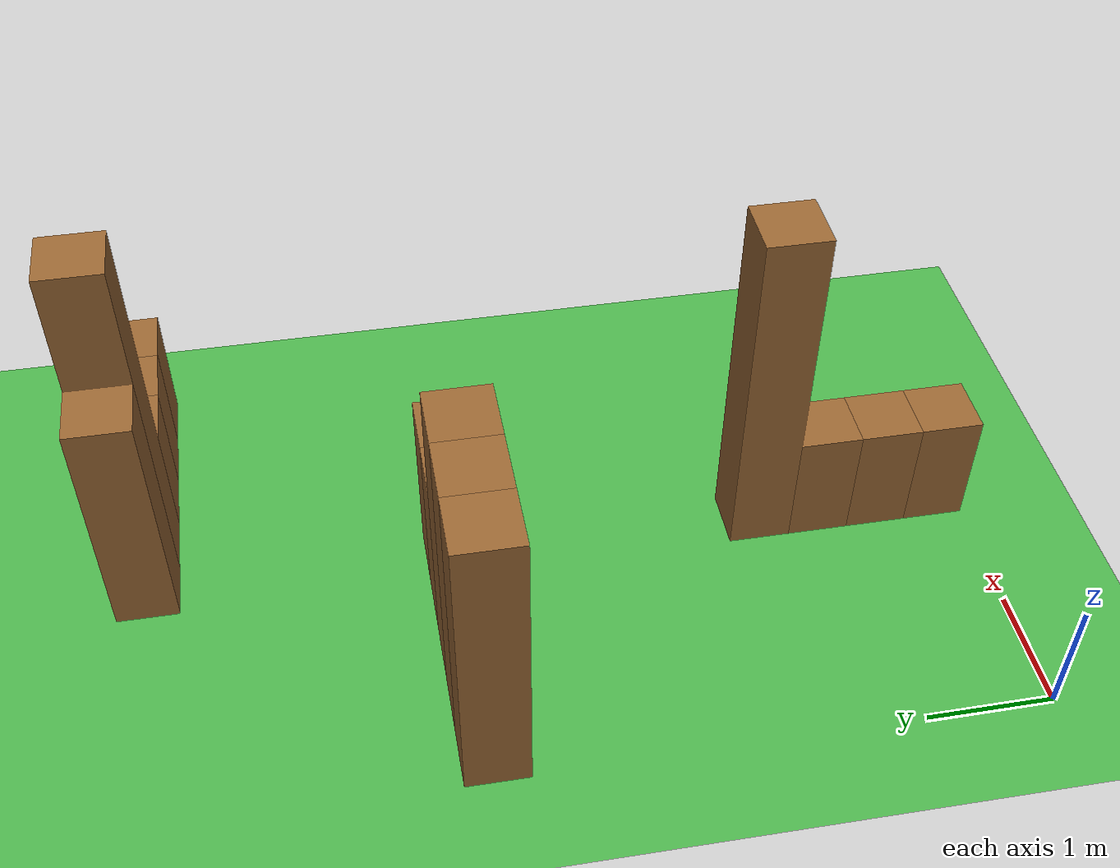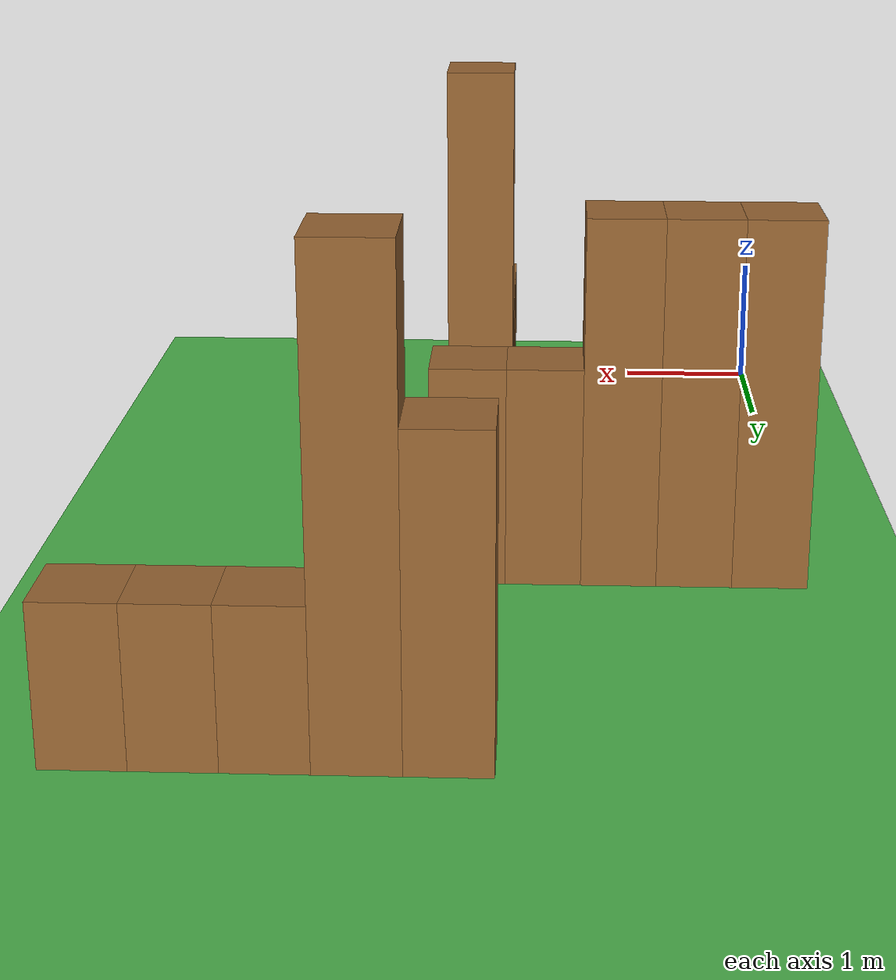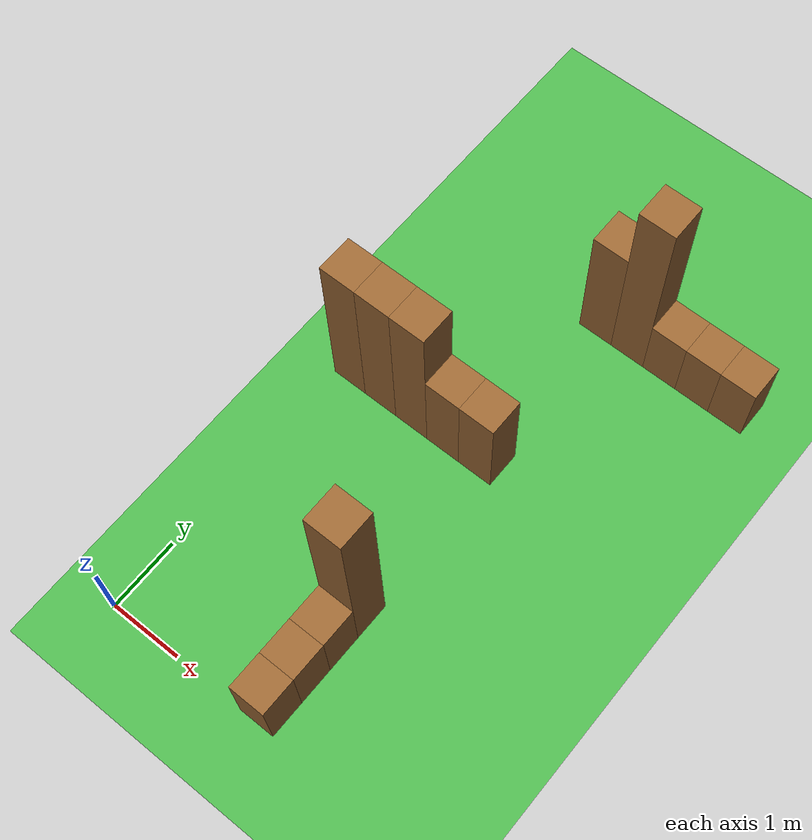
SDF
<?xml version="1.0"?>
<sdf version="1.7">
  <world name="bkk">

<!-- Physics settings -->
<physics type="ode">
  <max_step_size>0.004</max_step_size>
  <real_time_factor>1.0</real_time_factor>
  <real_time_update_rate>250</real_time_update_rate>
</physics>
<gravity>0 0 -9.8</gravity>

<!-- Magnetic field - Taiwan location (23.089813°N, 120.307312°E) -->
<magnetic_field>2.5e-05 1.8e-05 -4.0e-05</magnetic_field>

<!-- Atmosphere -->
<atmosphere type="adiabatic"/>

<!-- Spherical coordinates for GPS - Taiwan location (7QM238Q4+WW) -->
<spherical_coordinates>
  <surface_model>EARTH_WGS84</surface_model>
  <world_frame_orientation>ENU</world_frame_orientation>
  <latitude_deg>23.089813</latitude_deg>
  <longitude_deg>120.307312</longitude_deg>
  <elevation>0</elevation>
</spherical_coordinates>

<!-- Scene settings with no shadows -->
<scene>
  <ambient>1 1 1 1</ambient>
  <background>1 1 1 1</background>
  <shadows>false</shadows>
</scene>

<!-- GUI camera with top-down view -->
<gui>
  <camera name="user_camera">
    <pose>2.25 4.5 20 0 1.57 0</pose>
  </camera>
</gui>

<!-- Overhead directional light with no shadows -->
<light type="directional" name="no_shadow_light">
  <cast_shadows>false</cast_shadows>
  <pose>0 0 10 0 0 0</pose>
  <diffuse>1 1 1 1</diffuse>
  <specular>0.1 0.1 0.1 1</specular>
  <attenuation>
    <range>1000</range>
    <constant>1</constant>
    <linear>0</linear>
    <quadratic>0</quadratic>
  </attenuation>
  <direction>0 0 -1</direction>
</light>

<!-- Top-down camera directly above the grid -->
<model name="top_camera">
  <static>true</static>
  <pose>2.25 4.5 20 0 1.5708 0</pose>
  <link name="link">
    <sensor name="top_down_camera" type="camera">
      <pose>0 0 0 0 0 0</pose>
      <camera>
        <horizontal_fov>1.047</horizontal_fov>
        <image>
          <width>800</width>
          <height>800</height>
          <format>R8G8B8</format>
        </image>
        <clip>
          <near>0.1</near>
          <far>100</far>
        </clip>
      </camera>
      <always_on>true</always_on>
      <update_rate>30</update_rate>
      <visualize>true</visualize>
    </sensor>
  </link>
</model>

    <!-- Outer green ground plane (6x11) -->
    <model name="outer_ground_plane">
      <static>true</static>
      <pose>2.25 4.5 -0.01 0 0 0</pose>
      <link name="link">
        <collision name="collision">
          <geometry>
            <plane>
              <normal>0 0 1</normal>
              <size>6 11</size>
            </plane>
          </geometry>
          <surface>
            <friction>
              <ode/>
            </friction>
            <bounce/>
            <contact/>
          </surface>
        </collision>
        <visual name="visual">
          <geometry>
            <plane>
              <normal>0 0 1</normal>
              <size>6 11</size>
            </plane>
          </geometry>
          <material>
            <ambient>0.2 0.6 0.2 1</ambient>
            <diffuse>0.3 0.7 0.3 1</diffuse>
            <specular>0.1 0.1 0.1 1</specular>
          </material>
        </visual>
      </link>
    </model>

    <!-- Main brown ground plane (4.5x9) with origin at bottom-left corner -->
    <model name="ground_plane">
      <static>true</static>
      <pose>2.25 4.5 0 0 0 0</pose>
      <link name="link">
        <collision name="collision">
          <geometry>
            <plane>
              <normal>0 0 1</normal>
              <size>4.5 9</size>
            </plane>
          </geometry>
          <surface>
            <friction>
              <ode/>
            </friction>
            <bounce/>
            <contact/>
          </surface>
        </collision>
        <visual name="visual">
          <geometry>
            <plane>
              <normal>0 0 1</normal>
              <size>4.5 9</size>
            </plane>
          </geometry>
          <material>
             <ambient>0.5 0.5 0.5 1</ambient>
             <diffuse>0.6 0.6 0.6 1</diffuse>
             <specular>0.1 0.1 0.1 1</specular>
        </material>
        </visual>
      </link>
    </model>

    <!-- New layout: 4.5m × 9m with origin at bottom-left corner -->
    <!-- Top-right horizontal row: 5 blocks with heights 2, 3, 1, 1, 1 meters -->
    <!-- Positioned 2m from right edge, 2m from top edge -->

    <!-- Top-right row block 1: height 2m -->
    <model name="top_right_1">
      <static>true</static>
      <pose>2.25 6.75 1.0 0 0 0</pose>
      <link name="stack_link">
        <collision name="collision">
          <geometry>
            <box>
              <size>0.5 0.5 2.0</size>
            </box>
          </geometry>
        </collision>
        <visual name="visual">
          <geometry>
            <box>
              <size>0.5 0.5 2.0</size>
            </box>
          </geometry>
          <material>
            <ambient>0.4 0.25 0.1 1</ambient>
            <diffuse>0.6 0.4 0.2 1</diffuse>
            <specular>0.1 0.1 0.1 1</specular>
          </material>
        </visual>
        <inertial>
          <mass>2.0</mass>
          <inertia>
            <ixx>0.111</ixx>
            <ixy>0</ixy>
            <ixz>0</ixz>
            <iyy>0.111</iyy>
            <iyz>0</iyz>
            <izz>0.042</izz>
          </inertia>
        </inertial>
      </link>
    </model>

    <!-- Top-right row block 2: height 3m -->
    <model name="top_right_2">
      <static>true</static>
      <pose>2.75 6.75 1.5 0 0 0</pose>
      <link name="stack_link">
        <collision name="collision">
          <geometry>
            <box>
              <size>0.5 0.5 3.0</size>
            </box>
          </geometry>
        </collision>
        <visual name="visual">
          <geometry>
            <box>
              <size>0.5 0.5 3.0</size>
            </box>
          </geometry>
          <material>
            <ambient>0.4 0.25 0.1 1</ambient>
            <diffuse>0.6 0.4 0.2 1</diffuse>
            <specular>0.1 0.1 0.1 1</specular>
          </material>
        </visual>
        <inertial>
          <mass>3.0</mass>
          <inertia>
            <ixx>0.172</ixx>
            <ixy>0</ixy>
            <ixz>0</ixz>
            <iyy>0.172</iyy>
            <iyz>0</iyz>
            <izz>0.042</izz>
          </inertia>
        </inertial>
      </link>
    </model>

    <!-- Top-right row block 3: height 1m -->
    <model name="top_right_3">
      <static>true</static>
      <pose>3.25 6.75 0.5 0 0 0</pose>
      <link name="stack_link">
        <collision name="collision">
          <geometry>
            <box>
              <size>0.5 0.5 1.0</size>
            </box>
          </geometry>
        </collision>
        <visual name="visual">
          <geometry>
            <box>
              <size>0.5 0.5 1.0</size>
            </box>
          </geometry>
          <material>
            <ambient>0.4 0.25 0.1 1</ambient>
            <diffuse>0.6 0.4 0.2 1</diffuse>
            <specular>0.1 0.1 0.1 1</specular>
          </material>
        </visual>
        <inertial>
          <mass>1.0</mass>
          <inertia>
            <ixx>0.028</ixx>
            <ixy>0</ixy>
            <ixz>0</ixz>
            <iyy>0.028</iyy>
            <iyz>0</iyz>
            <izz>0.042</izz>
          </inertia>
        </inertial>
      </link>
    </model>

    <!-- Top-right row block 4: height 1m -->
    <model name="top_right_4">
      <static>true</static>
      <pose>3.75 6.75 0.5 0 0 0</pose>
      <link name="stack_link">
        <collision name="collision">
          <geometry>
            <box>
              <size>0.5 0.5 1.0</size>
            </box>
          </geometry>
        </collision>
        <visual name="visual">
          <geometry>
            <box>
              <size>0.5 0.5 1.0</size>
            </box>
          </geometry>
          <material>
            <ambient>0.4 0.25 0.1 1</ambient>
            <diffuse>0.6 0.4 0.2 1</diffuse>
            <specular>0.1 0.1 0.1 1</specular>
          </material>
        </visual>
        <inertial>
          <mass>1.0</mass>
          <inertia>
            <ixx>0.028</ixx>
            <ixy>0</ixy>
            <ixz>0</ixz>
            <iyy>0.028</iyy>
            <iyz>0</iyz>
            <izz>0.042</izz>
          </inertia>
        </inertial>
      </link>
    </model>

    <!-- Top-right row block 5: height 1m -->
    <model name="top_right_5">
      <static>true</static>
      <pose>4.25 6.75 0.5 0 0 0</pose>
      <link name="stack_link">
        <collision name="collision">
          <geometry>
            <box>
              <size>0.5 0.5 1.0</size>
            </box>
          </geometry>
        </collision>
        <visual name="visual">
          <geometry>
            <box>
              <size>0.5 0.5 1.0</size>
            </box>
          </geometry>
          <material>
            <ambient>0.4 0.25 0.1 1</ambient>
            <diffuse>0.6 0.4 0.2 1</diffuse>
            <specular>0.1 0.1 0.1 1</specular>
          </material>
        </visual>
        <inertial>
          <mass>1.0</mass>
          <inertia>
            <ixx>0.028</ixx>
            <ixy>0</ixy>
            <ixz>0</ixz>
            <iyy>0.028</iyy>
            <iyz>0</iyz>
            <izz>0.042</izz>
          </inertia>
        </inertial>
      </link>
    </model>

    <!-- Middle-left horizontal row: 5 blocks with heights 2.5, 2.5, 2.5, 1.5, 1.5 meters -->
    <!-- Positioned 2m from left edge, 2m below top-right row -->

    <!-- Middle-left row block 1: height 2.5m -->
    <model name="middle_left_1">
      <static>true</static>
      <pose>0.25 4.25 1.25 0 0 0</pose>
      <link name="stack_link">
        <collision name="collision">
          <geometry>
            <box>
              <size>0.5 0.5 2.5</size>
            </box>
          </geometry>
        </collision>
        <visual name="visual">
          <geometry>
            <box>
              <size>0.5 0.5 2.5</size>
            </box>
          </geometry>
          <material>
            <ambient>0.4 0.25 0.1 1</ambient>
            <diffuse>0.6 0.4 0.2 1</diffuse>
            <specular>0.1 0.1 0.1 1</specular>
          </material>
        </visual>
        <inertial>
          <mass>2.5</mass>
          <inertia>
            <ixx>0.142</ixx>
            <ixy>0</ixy>
            <ixz>0</ixz>
            <iyy>0.142</iyy>
            <iyz>0</iyz>
            <izz>0.042</izz>
          </inertia>
        </inertial>
      </link>
    </model>

    <!-- Middle-left row block 2: height 2.5m -->
    <model name="middle_left_2">
      <static>true</static>
      <pose>0.75 4.25 1.25 0 0 0</pose>
      <link name="stack_link">
        <collision name="collision">
          <geometry>
            <box>
              <size>0.5 0.5 2.5</size>
            </box>
          </geometry>
        </collision>
        <visual name="visual">
          <geometry>
            <box>
              <size>0.5 0.5 2.5</size>
            </box>
          </geometry>
          <material>
            <ambient>0.4 0.25 0.1 1</ambient>
            <diffuse>0.6 0.4 0.2 1</diffuse>
            <specular>0.1 0.1 0.1 1</specular>
          </material>
        </visual>
        <inertial>
          <mass>2.5</mass>
          <inertia>
            <ixx>0.142</ixx>
            <ixy>0</ixy>
            <ixz>0</ixz>
            <iyy>0.142</iyy>
            <iyz>0</iyz>
            <izz>0.042</izz>
          </inertia>
        </inertial>
      </link>
    </model>

    <!-- Middle-left row block 3: height 2.5m -->
    <model name="middle_left_3">
      <static>true</static>
      <pose>1.25 4.25 1.25 0 0 0</pose>
      <link name="stack_link">
        <collision name="collision">
          <geometry>
            <box>
              <size>0.5 0.5 2.5</size>
            </box>
          </geometry>
        </collision>
        <visual name="visual">
          <geometry>
            <box>
              <size>0.5 0.5 2.5</size>
            </box>
          </geometry>
          <material>
            <ambient>0.4 0.25 0.1 1</ambient>
            <diffuse>0.6 0.4 0.2 1</diffuse>
            <specular>0.1 0.1 0.1 1</specular>
          </material>
        </visual>
        <inertial>
          <mass>2.5</mass>
          <inertia>
            <ixx>0.142</ixx>
            <ixy>0</ixy>
            <ixz>0</ixz>
            <iyy>0.142</iyy>
            <iyz>0</iyz>
            <izz>0.042</izz>
          </inertia>
        </inertial>
      </link>
    </model>

    <!-- Middle-left row block 4: height 1.5m -->
    <model name="middle_left_4">
      <static>true</static>
      <pose>1.75 4.25 0.75 0 0 0</pose>
      <link name="stack_link">
        <collision name="collision">
          <geometry>
            <box>
              <size>0.5 0.5 1.5</size>
            </box>
          </geometry>
        </collision>
        <visual name="visual">
          <geometry>
            <box>
              <size>0.5 0.5 1.5</size>
            </box>
          </geometry>
          <material>
            <ambient>0.4 0.25 0.1 1</ambient>
            <diffuse>0.6 0.4 0.2 1</diffuse>
            <specular>0.1 0.1 0.1 1</specular>
          </material>
        </visual>
        <inertial>
          <mass>1.5</mass>
          <inertia>
            <ixx>0.063</ixx>
            <ixy>0</ixy>
            <ixz>0</ixz>
            <iyy>0.063</iyy>
            <iyz>0</iyz>
            <izz>0.042</izz>
          </inertia>
        </inertial>
      </link>
    </model>

    <!-- Middle-left row block 5: height 1.5m -->
    <model name="middle_left_5">
      <static>true</static>
      <pose>2.25 4.25 0.75 0 0 0</pose>
      <link name="stack_link">
        <collision name="collision">
          <geometry>
            <box>
              <size>0.5 0.5 1.5</size>
            </box>
          </geometry>
        </collision>
        <visual name="visual">
          <geometry>
            <box>
              <size>0.5 0.5 1.5</size>
            </box>
          </geometry>
          <material>
            <ambient>0.4 0.25 0.1 1</ambient>
            <diffuse>0.6 0.4 0.2 1</diffuse>
            <specular>0.1 0.1 0.1 1</specular>
          </material>
        </visual>
        <inertial>
          <mass>1.5</mass>
          <inertia>
            <ixx>0.063</ixx>
            <ixy>0</ixy>
            <ixz>0</ixz>
            <iyy>0.063</iyy>
            <iyz>0</iyz>
            <izz>0.042</izz>
          </inertia>
        </inertial>
      </link>
    </model>

    <!-- Bottom-middle vertical stack: 4 blocks with heights 3, 1, 1, 1 meters -->
    <!-- Positioned centered horizontally, 2m below middle-left row -->

    <!-- Bottom-middle stack block 1: height 3m -->
    <model name="bottom_middle_1">
      <static>true</static>
      <pose>2.25 1.75 1.5 0 0 0</pose>
      <link name="stack_link">
        <collision name="collision">
          <geometry>
            <box>
              <size>0.5 0.5 3.0</size>
            </box>
          </geometry>
        </collision>
        <visual name="visual">
          <geometry>
            <box>
              <size>0.5 0.5 3.0</size>
            </box>
          </geometry>
          <material>
            <ambient>0.4 0.25 0.1 1</ambient>
            <diffuse>0.6 0.4 0.2 1</diffuse>
            <specular>0.1 0.1 0.1 1</specular>
          </material>
        </visual>
        <inertial>
          <mass>3.0</mass>
          <inertia>
            <ixx>0.172</ixx>
            <ixy>0</ixy>
            <ixz>0</ixz>
            <iyy>0.172</iyy>
            <iyz>0</iyz>
            <izz>0.042</izz>
          </inertia>
        </inertial>
      </link>
    </model>

    <!-- Bottom-middle stack block 2: height 1m -->
    <model name="bottom_middle_2">
      <static>true</static>
      <pose>2.25 1.25 0.5 0 0 0</pose>
      <link name="stack_link">
        <collision name="collision">
          <geometry>
            <box>
              <size>0.5 0.5 1.0</size>
            </box>
          </geometry>
        </collision>
        <visual name="visual">
          <geometry>
            <box>
              <size>0.5 0.5 1.0</size>
            </box>
          </geometry>
          <material>
            <ambient>0.4 0.25 0.1 1</ambient>
            <diffuse>0.6 0.4 0.2 1</diffuse>
            <specular>0.1 0.1 0.1 1</specular>
          </material>
        </visual>
        <inertial>
          <mass>1.0</mass>
          <inertia>
            <ixx>0.028</ixx>
            <ixy>0</ixy>
            <ixz>0</ixz>
            <iyy>0.028</iyy>
            <iyz>0</iyz>
            <izz>0.042</izz>
          </inertia>
        </inertial>
      </link>
    </model>

    <!-- Bottom-middle stack block 3: height 1m -->
    <model name="bottom_middle_3">
      <static>true</static>
      <pose>2.25 0.75 0.5 0 0 0</pose>
      <link name="stack_link">
        <collision name="collision">
          <geometry>
            <box>
              <size>0.5 0.5 1.0</size>
            </box>
          </geometry>
        </collision>
        <visual name="visual">
          <geometry>
            <box>
              <size>0.5 0.5 1.0</size>
            </box>
          </geometry>
          <material>
            <ambient>0.4 0.25 0.1 1</ambient>
            <diffuse>0.6 0.4 0.2 1</diffuse>
            <specular>0.1 0.1 0.1 1</specular>
          </material>
        </visual>
        <inertial>
          <mass>1.0</mass>
          <inertia>
            <ixx>0.028</ixx>
            <ixy>0</ixy>
            <ixz>0</ixz>
            <iyy>0.028</iyy>
            <iyz>0</iyz>
            <izz>0.042</izz>
          </inertia>
        </inertial>
      </link>
    </model>

    <!-- Bottom-middle stack block 4: height 1m -->
    <model name="bottom_middle_4">
      <static>true</static>
      <pose>2.25 0.25 0.5 0 0 0</pose>
      <link name="stack_link">
        <collision name="collision">
          <geometry>
            <box>
              <size>0.5 0.5 1.0</size>
            </box>
          </geometry>
        </collision>
        <visual name="visual">
          <geometry>
            <box>
              <size>0.5 0.5 1.0</size>
            </box>
          </geometry>
          <material>
            <ambient>0.4 0.25 0.1 1</ambient>
            <diffuse>0.6 0.4 0.2 1</diffuse>
            <specular>0.1 0.1 0.1 1</specular>
          </material>
        </visual>
        <inertial>
          <mass>1.0</mass>
          <inertia>
            <ixx>0.028</ixx>
            <ixy>0</ixy>
            <ixz>0</ixz>
            <iyy>0.028</iyy>
            <iyz>0</iyz>
            <izz>0.042</izz>
          </inertia>
        </inertial>
      </link>
    </model>

  </world>
</sdf>
